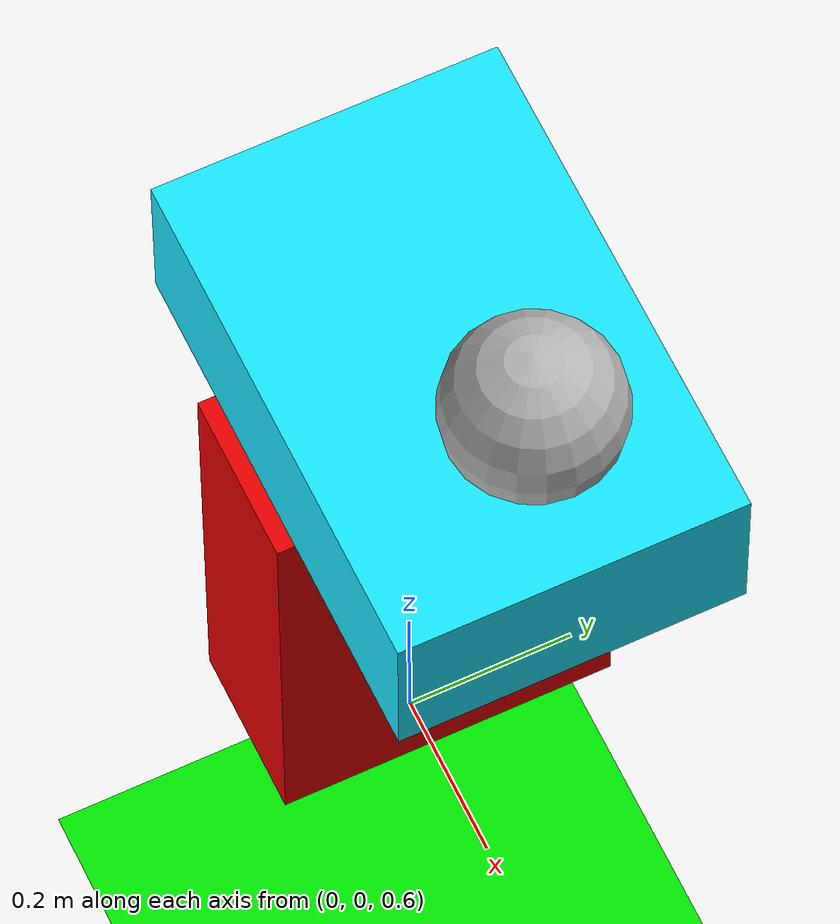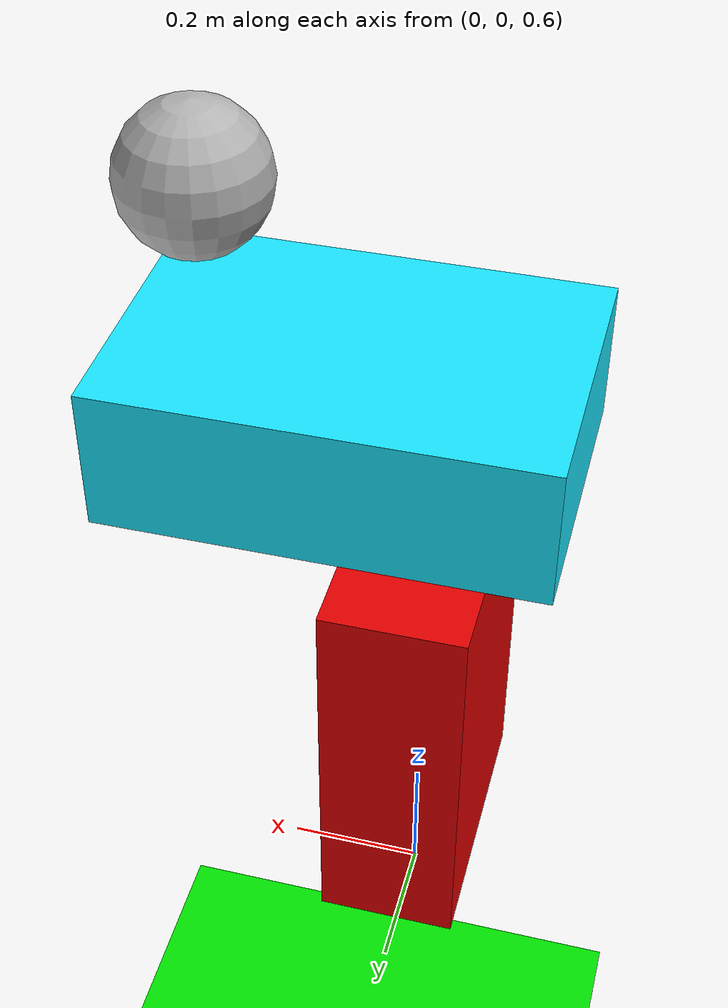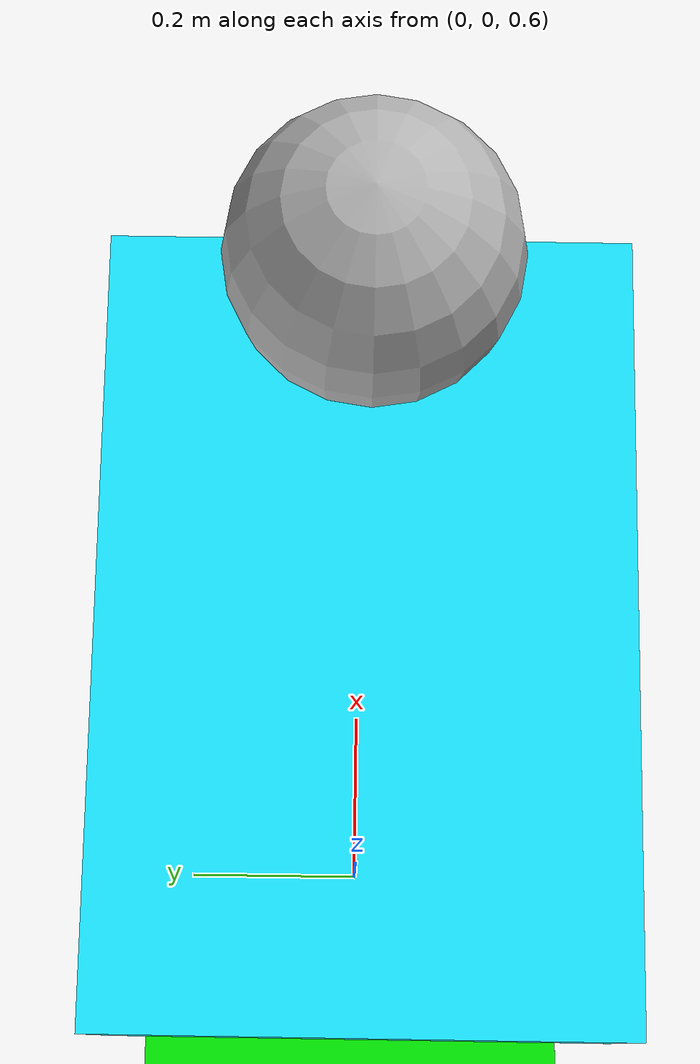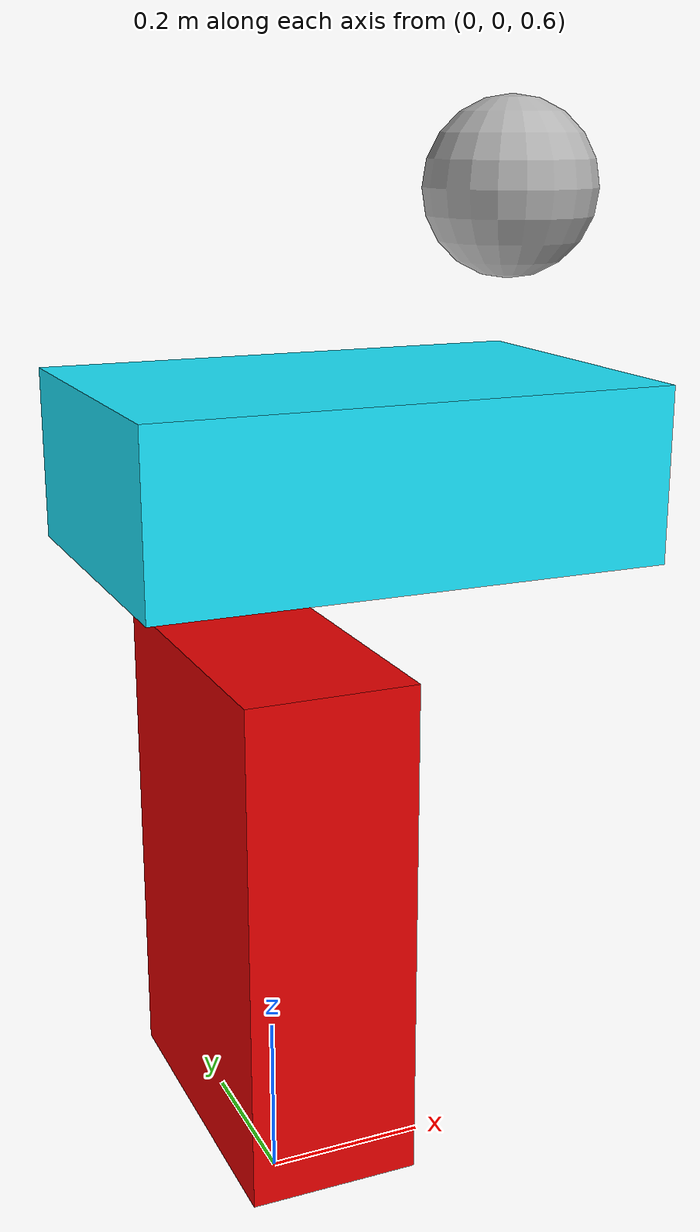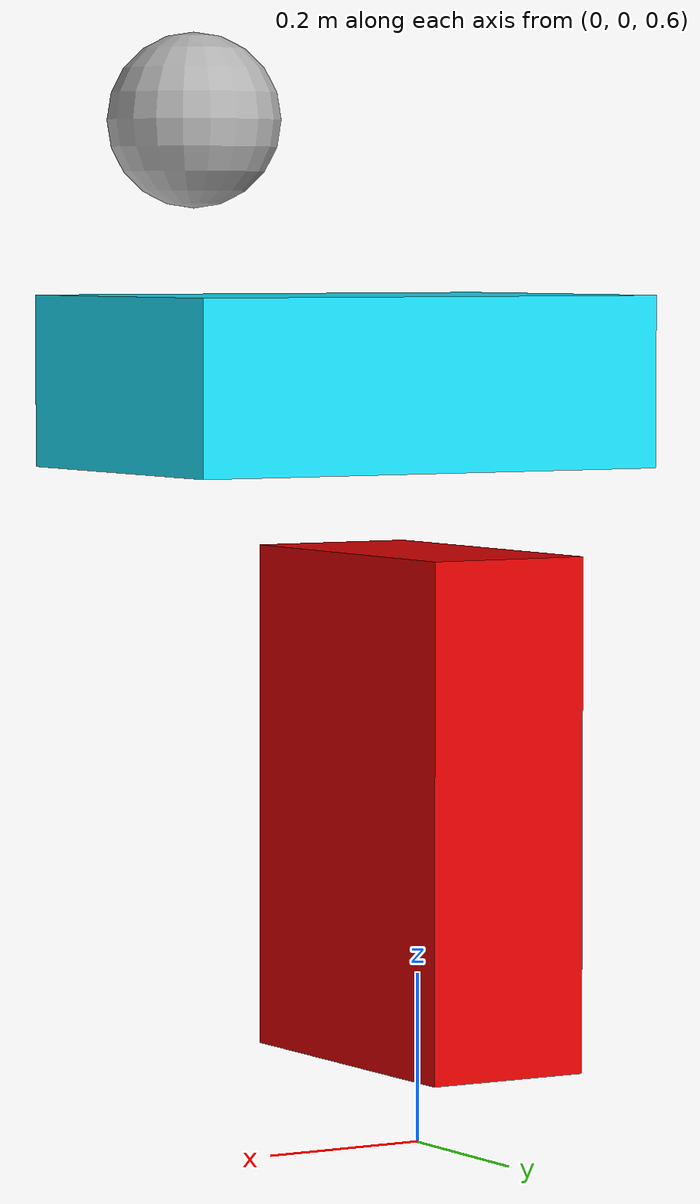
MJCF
<!--Modifikujeme soubor a divam se, co se stane-->
<mujoco>
	<option gravity = "0 0 -9.81"/>  <!--Odstraneni gravitace-->
	<worldbody>
        <light diffuse=".5 .5 .5" pos="0 0 3" dir="0 0 -1"/>

		<!--rgba = R, G, B, Průhlednost-->
		<geom type="plane" size="1 1 0.1" rgba="0 0.9 0 1"/>

		<body pos="0 0 1">
			<joint type="free"/>
			<geom type="box" size=".1 .2 .3" rgba="0.9 0 0 1"/>
		</body>

		<body pos="0.1 0 1.5" euler = "0 90 0" >
			<joint type="free"/>
			<geom type="box" size=".1 .2 .3" rgba="0.1 0.9 1 1"/>
		</body>

		<body pos="0.3 0 1.8" >
			<joint type="free"/>
			<geom type="sphere" size=".1 " rgba="0.7 0.7 0.7 1"/>
		</body>

	</worldbody>
</mujoco>
